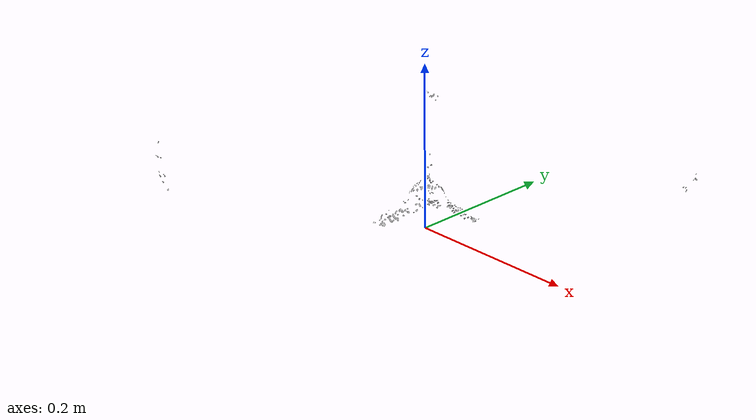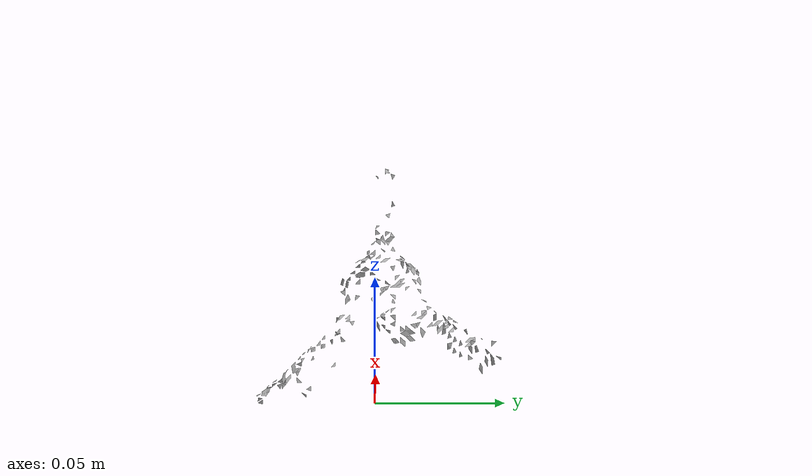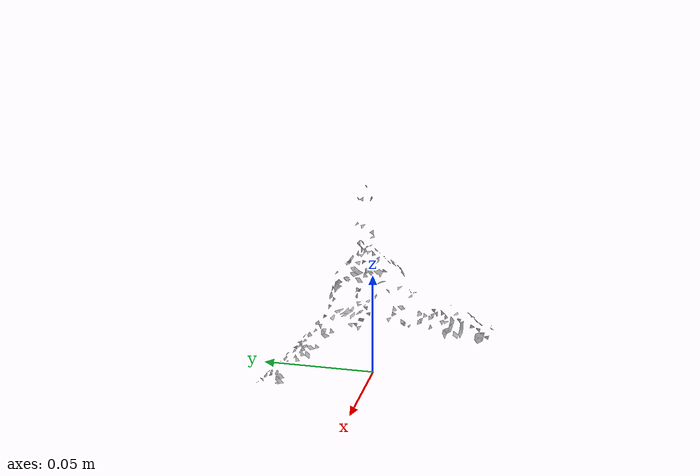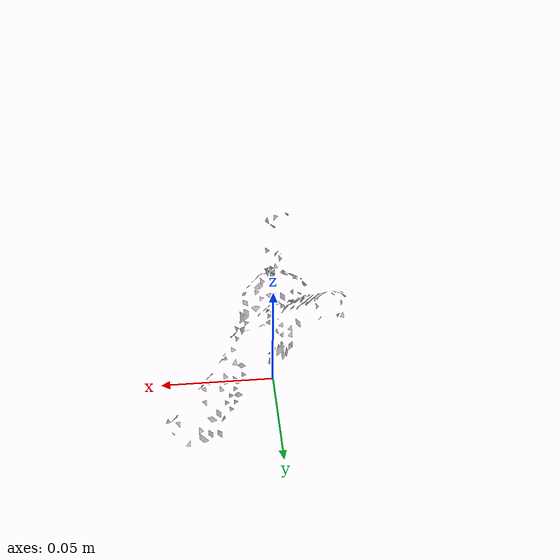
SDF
<?xml version='1.0'?>
<sdf version="1.4">
  <model name="h_toy_airplane">
    <static>false</static>
    <link name="link">
      <inertial>
        <pose>-0.07455747513783292 0.06388516331751187 -0.047035564696148786 -0.4040553477474322 0.07766642154839247 -2.2424486374989763</pose>
        <mass>-4.5185563712194215e-05</mass>
        <inertia>
          <ixx>-1.1301454720739678e-07</ixx>
          <ixy>-1.3447836228847477e-22</ixy>
          <ixz>3.79715326115522e-22</ixz>
          <iyy>-1.571639101062248e-06</iyy>
          <iyz>-1.0632275575737335e-22</iyz>
          <izz>-2.301859090608226e-06</izz>
        </inertia>
      </inertial>
      <collision name="collision">
        <geometry>
          <mesh>
            <!-- Use a downsampled mesh for collisions -->
            <uri>model://072-h_toy_airplane/tsdf/textured.obj</uri>
	        </mesh>
        </geometry>
        <surface>
      </surface>
      </collision>
      <visual name="visual">
        <geometry>
          <mesh>
            <uri>model://072-h_toy_airplane/tsdf/textured.obj</uri>
	        </mesh>
        </geometry>
        <material>
          <script>
            <uri>model://072-h_toy_airplane/h_toy_airplane.material</uri>
            <name>h_toy_airplane</name>
          </script>
        </material>
      </visual>
    </link>
  </model>
</sdf>
